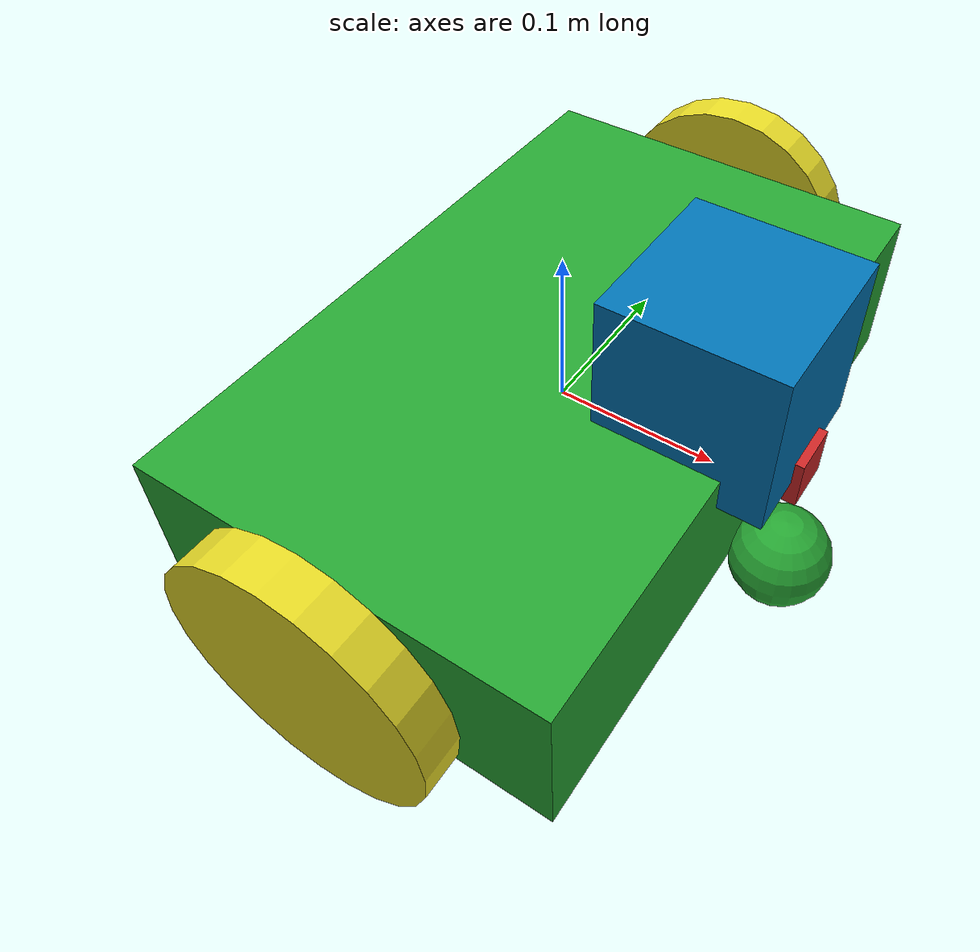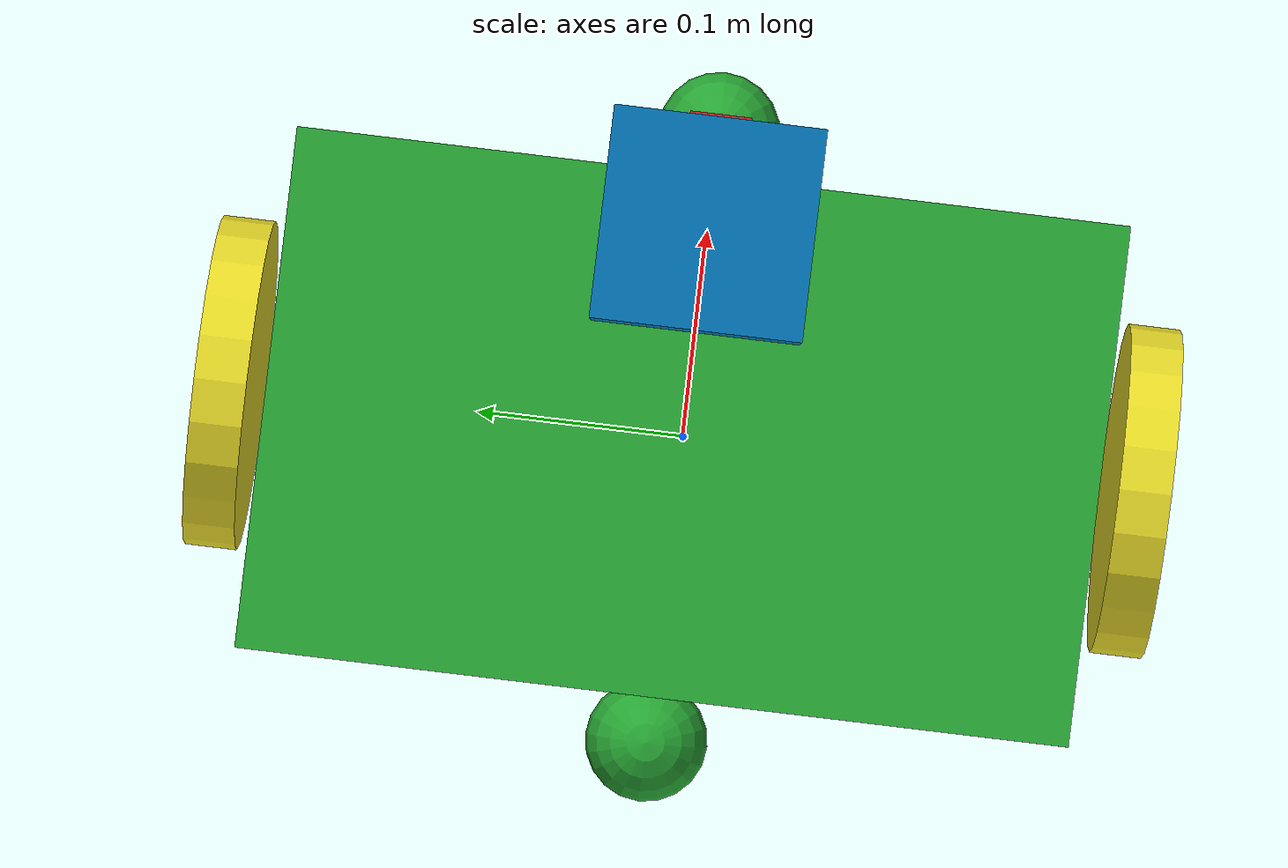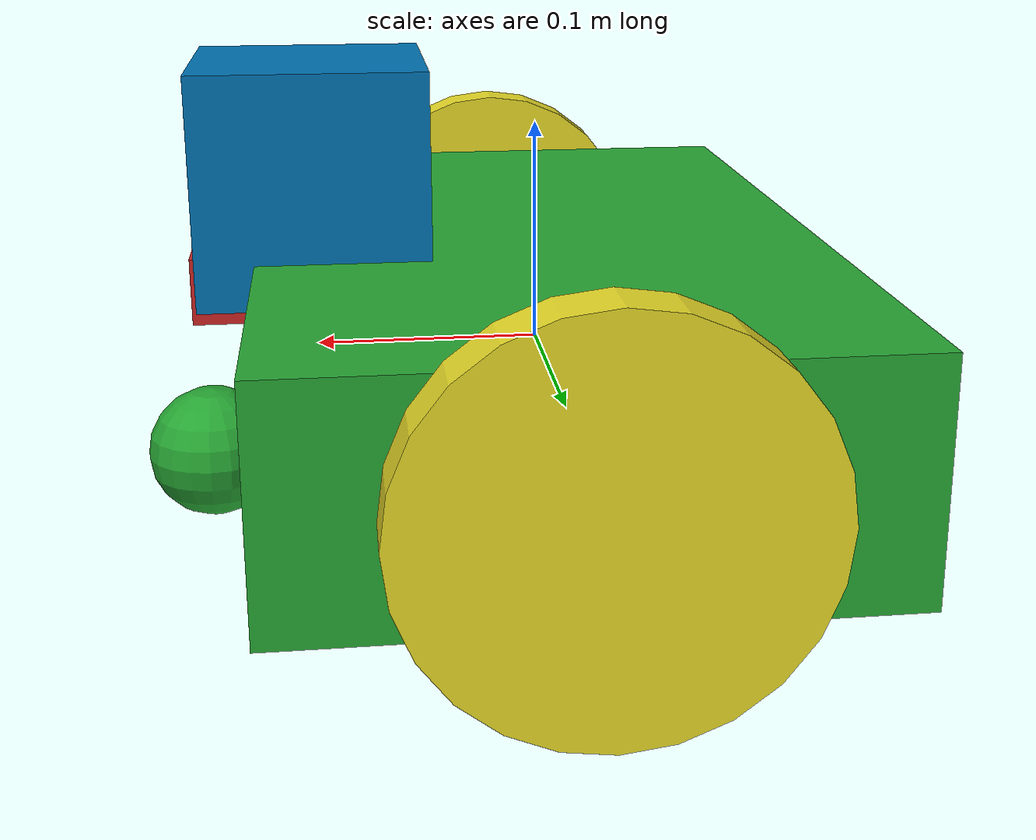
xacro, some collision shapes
<?xml version='1.0'?>

<robot name="my_robot" xmlns:xacro="http://www.ros.org/wiki/xacro">
  <xacro:include filename="$(find my_robot)/urdf/my_robot.gazebo" />
  <link name="robot_footprint"></link>

  <joint name="robot_footprint_joint" type="fixed">
    <origin xyz="0 0 0" rpy="0 0 0" />
    <parent link="robot_footprint"/>
    <child link="chassis" />
  </joint>

  <link name='chassis'>
    <pose>0 0 0.1 0 0 0</pose>

    <inertial>
      <mass value="5.0"/>
      <origin xyz="0.0 0 0" rpy=" 0 0 0"/>
      <inertia
          ixx="0.1" ixy="0" ixz="0"
          iyy="0.1" iyz="0"
          izz="0.1"
      />
    </inertial>

    <collision name='collision'>
      <origin xyz="0 0 0" rpy=" 0 0 0"/>
      <geometry>
        <box size=".25 .4 .1"/>
      </geometry>
    </collision>

    <visual name='chassis_visual'>
      <origin xyz="0 0 0" rpy=" 0 0 0"/>
      <geometry>
        <box size=".25 .4 .1"/>
      </geometry>
    </visual>

    <collision name='back_caster_collision'>
      <origin xyz="-0.15 0 -0.05" rpy=" 0 0 0"/>
      <geometry>
        <sphere radius="0.03"/>
      </geometry>
    </collision>

    <visual name='back_caster_visual'>
      <origin xyz="-0.15 0 -0.05" rpy=" 0 0 0"/>
      <geometry>
        <sphere radius="0.03"/>
      </geometry>
    </visual>

    <collision name='front_caster_collision'>
      <origin xyz="0.15 0 -0.05" rpy=" 0 0 0"/>
      <geometry>
        <sphere radius="0.03"/>
      </geometry>
    </collision>

    <visual name='front_caster_visual'>
      <origin xyz="0.15 0 -0.05" rpy=" 0 0 0"/>
      <geometry>
        <sphere radius="0.03"/>
      </geometry>
    </visual>

  </link>

 <link name='left_wheel'>
    <pose>0 0 0 0 0 0</pose>

    <inertial>
      <mass value="3.0"/>
      <origin xyz="0.0 0 0" rpy=" 0 1.5707 1.5707"/>
      <inertia
          ixx="0.1" ixy="0" ixz="0"
          iyy="0.1" iyz="0"
          izz="0.1"/>
    </inertial>

    <collision name='left_wheel_collision'>
      <origin xyz="0 0 0" rpy=" 0 1.5707 1.5707"/>
      <geometry>
        <cylinder radius=".08" length="0.025"/>
      </geometry>
    </collision>

    <visual name='left_wheel_visual'>
      <origin xyz="0 0 0" rpy=" 0 1.5707 1.5707"/>
      <geometry>
        <cylinder radius=".08" length="0.025"/>
      </geometry>
    </visual>

 </link>

     <joint type="continuous" name="left_wheel_hinge">
       <origin xyz="0.0 0.22 0" rpy="0 0 0"/>
       <child link="left_wheel"/>
       <parent link="chassis"/>
       <axis xyz="0 1 0" rpy="0 0 0"/>
       <limit effort="10000" velocity="1000"/>
       <dynamics damping="1.0" friction="1.0"/>
     </joint>

      <link name='right_wheel'>
        <pose>0 0.0 0 0 0 0</pose>

        <inertial>
          <mass value="3.0"/>
          <origin xyz="0.0 0 0" rpy=" 0 1.5707 1.5707"/>
          <inertia
              ixx="0.1" ixy="0" ixz="0"
              iyy="0.1" iyz="0"
              izz="0.1"/>
        </inertial>

        <collision name='right_wheel_collision'>
          <origin xyz="0 0 0" rpy=" 0 1.5707 1.5707"/>
          <geometry>
            <cylinder radius=".08" length="0.025"/>
          </geometry>
        </collision>

        <visual name='right_wheel_visual'>
          <origin xyz="0 0 0" rpy=" 0 1.5707 1.5707"/>
          <geometry>
            <cylinder radius=".08" length="0.025"/>
        </geometry>
        </visual>
     </link>

     <joint type="continuous" name="right_wheel_hinge">
      <origin xyz=".0 -0.22 0" rpy="0 0 0"/>
      <child link="right_wheel"/>
      <parent link="chassis"/>
      <axis xyz="0 1 0" rpy="0 0 0"/>
      <limit effort="10000" velocity="1000"/>
      <dynamics damping="1.0" friction="1.0"/>
    </joint>

    <link name='hokuyo'>
       <pose>0.0 0 .0 0 0 0</pose>

       <inertial>
         <mass value="1e-5"/>
         <origin xyz="0 0 0" rpy=" 0 0 0"/>
         <inertia
             ixx="1e-6" ixy="0" ixz="0"
             iyy="1e-6" iyz="0"
             izz="1e-6"/>
       </inertial>

       <collision name='hokuyo_collision'>
         <origin xyz="0 0 0" rpy=" 0 0 0"/>
         <geometry>
           <box size=".1 .1 .1"/>
         </geometry>
       </collision>

       <visual name='hokuyo_visual'>
         <origin xyz="0 0 0" rpy=" 0 0 0"/>
         <geometry>
           <mesh filename="package://my_robot/meshes/hokuyo.dae"/>
         </geometry>
       </visual>
     </link>

     <joint type="fixed" name="hokuyo_joint">
       <origin xyz="0.1 0 .08" rpy="0 0 0"/>
       <child link="hokuyo"/>
       <parent link="chassis"/>
       <axis xyz="1 1 1" rpy="0 0 0"/>
     </joint>

     <link name='camera'>
       <pose> 0.0 0 0 0 0 0</pose>

       <inertial>
         <mass value=".1"/>
         <origin xyz="0 0 0" rpy=" 0 0 0"/>
         <inertia
             ixx="1e-6" ixy="0" ixz="0"
             iyy="1e-6" iyz="0"
             izz="1e-6"/>
       </inertial>

       <collision name='camera_collision'>
         <origin xyz="0 0 0" rpy=" 0 0 0"/>
         <geometry>
           <box size=".03 .03 .03"/>
         </geometry>
       </collision>

       <visual name='camera_visual'>
         <origin xyz="0 0 0" rpy=" 0 0 0"/>
         <geometry>
           <box size=".03 .03 .03"/>
         </geometry>
       </visual>
     </link>

    <joint name="camera_optical_joint" type="fixed">
      <origin xyz="0 0 0" rpy="-1.5707 0 -1.5707"/>
      <parent link="camera"/>
      <child link="camera_link_optical"/>
    </joint>

    <link name="camera_link_optical">
    </link>

    <joint type="fixed" name="camera_joint">
        <origin xyz="0.14 0 0.03" rpy="0 0 0"/>
        <child link="camera"/>
        <parent link="chassis"/>
        <axis xyz="1 1 1" rpy="0 0 0"/>
    </joint>

    <gazebo reference="left_wheel">
        <material>Gazebo/Yellow</material>
    </gazebo>

    <gazebo reference="right_wheel">
        <material>Gazebo/Yellow</material>
    </gazebo>

    <gazebo reference="chassis">
        <material>Gazebo/Green</material>
    </gazebo>

      <gazebo reference="camera">
          <material>Gazebo/Red</material>
      </gazebo>

</robot>
